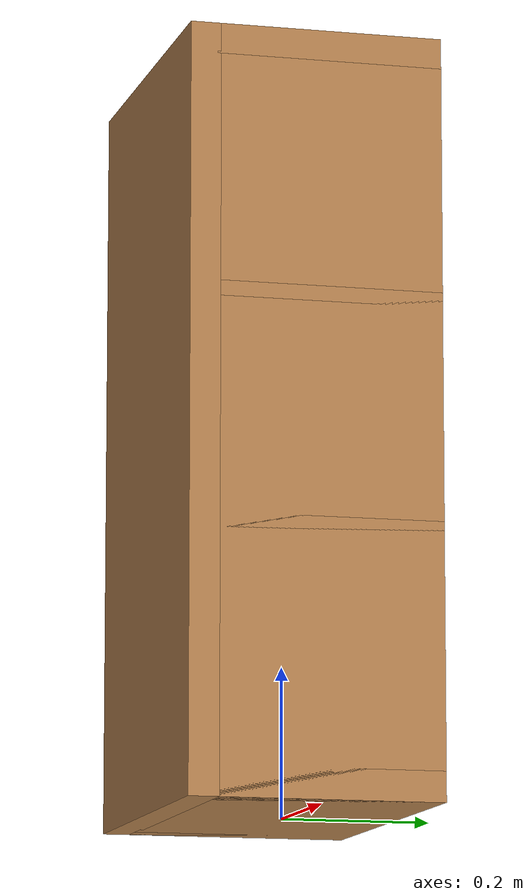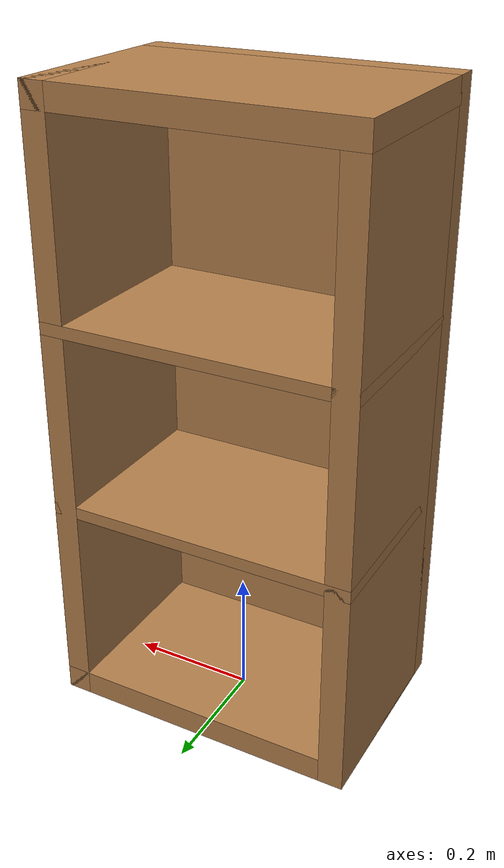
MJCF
<?xml version="1.0" encoding="utf-8"?>

<mujoco model="shelf">
    <asset>
        <texture file="../textures/light-wood.png" type="cube" name="light-wood" />
        <material name="MatLightWood" texture="light-wood" texrepeat="3 3" specular="0.4" shininess="0.1" />
    </asset>

    <worldbody>
        <body>
            <body name="object" pos="0 0 0.5">
                <!-- Base -->
                <geom
                    type="box" size="0.25 0.15 0.02"
                    pos="0 0 -0.48"
                    material="MatLightWood"
                    group="0"
                    />
                <!-- Top -->
                <geom
                    type="box" size="0.25 0.15 0.02"
                    pos="0 0 0.48"
                    material="MatLightWood"
                    group="0"
                    />
                <!-- Middle Shelves: Adjust the pos z-value for each shelf's vertical position -->
                <geom
                    type="box" size="0.25 0.15 0.01"
                    pos="0 0 -0.15"
                    material="MatLightWood"
                    group="0"
                    />
                <geom
                    type="box" size="0.25 0.15 0.01"
                    pos="0 0 0.15"
                    material="MatLightWood"
                    group="0"
                    />
                <!-- Sides -->
                <geom
                    type="box" size="0.02 0.15 0.5"
                    pos="-0.23 0 0"
                    material="MatLightWood"
                    group="0"
                    />
                <geom
                    type="box" size="0.02 0.15 0.5"
                    pos="0.23 0 0"
                    material="MatLightWood"
                    group="0"
                    />
                <!-- Back -->
                <geom
                    type="box" size="0.25 0.02 0.5"
                    pos="0 -0.165 0"
                    material="MatLightWood"
                    group="0"
                    />
            </body>
            <site name="bottom_site" pos="0 0 -0.0207" rgba="0 0 0 0" size="0.005"/>
            <site name="top_site" pos="0 0 0.007" rgba="0 0 0 0" size="0.005"/>
            <site name="horizontal_radius_site" pos="0 0 0" rgba="0 0 0 0" size="0.003"/>
        </body>

    </worldbody>
</mujoco>
